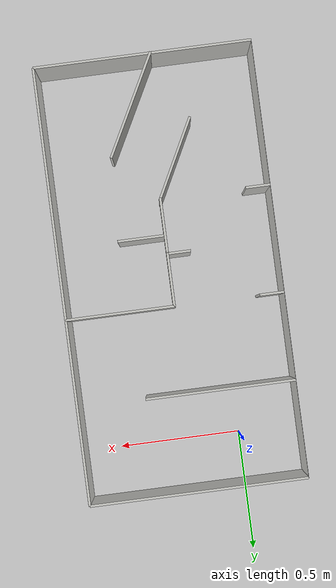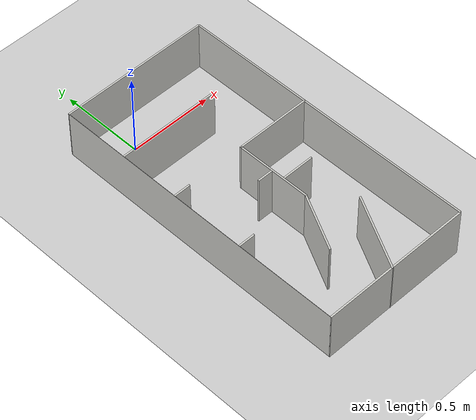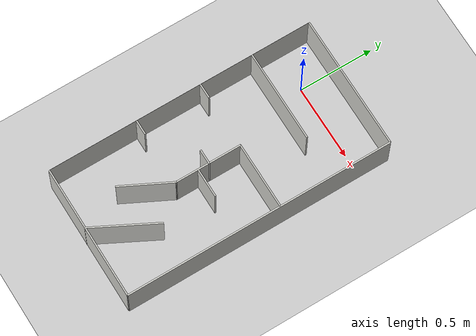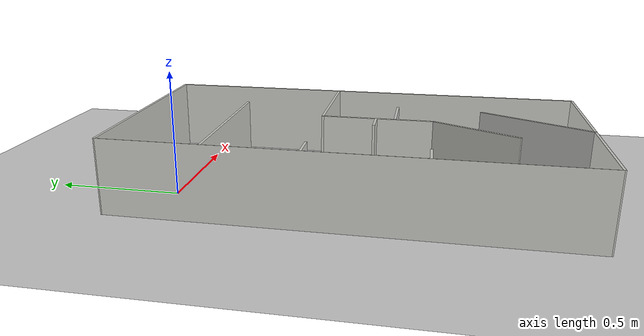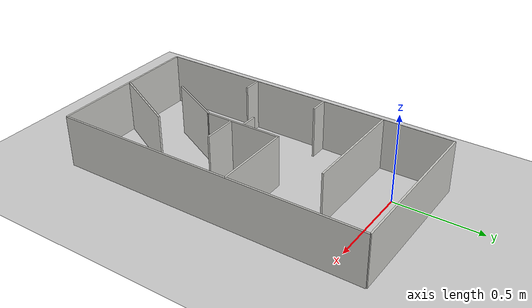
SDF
<sdf version="1.6">
 <world name="default">
  <light name="sun" type="directional">
   <pose>0 0 10 0 -0 0</pose>
   <diffuse>0.8 0.8 0.8 1</diffuse>
   <specular>0.2 0.2 0.2 1</specular>
   <attenuation>
    <range>1000</range>
    <constant>0.9</constant>
    <linear>0.01</linear>
    <quadratic>0.001</quadratic>
   </attenuation>
   <direction>-0.5 0.1 -0.9</direction>
  </light>
  <model name="ground_plane">
   <static>1</static>
   <link name="link">
    <collision name="collision">
     <geometry><plane><normal>0 0 1</normal><size>100 100</size></plane></geometry>
     <surface>
      <contact><collide_bitmask>65535</collide_bitmask></contact>
      <friction><ode><mu>100</mu><mu2>50</mu2></ode></friction>
     </surface>
    </collision>
    <visual name="visual">
     <cast_shadows>0</cast_shadows>
     <geometry><plane><normal>0 0 1</normal><size>100 100</size></plane></geometry>
     <material>
      <script><uri>file://media/materials/scripts/gazebo.material</uri><name>Gazebo/Grey</name></script>
     </material>
    </visual>
   </link>
  </model>
  <gravity>0 0 -9.8</gravity>
  <magnetic_field>6e-06 2.3e-05 -4.2e-05</magnetic_field>
  <atmosphere type="adiabatic"/>
  <physics name="default_physics" default="0" type="ode">
   <max_step_size>0.001</max_step_size>
   <real_time_factor>1</real_time_factor>
   <real_time_update_rate>1000</real_time_update_rate>
  </physics>
  <scene><ambient>0.4 0.4 0.4 1</ambient><background>0.7 0.7 0.7 1</background><shadows>1</shadows></scene>
  <audio><device>default</device></audio>
  <spherical_coordinates>
   <surface_model>EARTH_WGS84</surface_model>
   <latitude_deg>0</latitude_deg>
   <longitude_deg>0</longitude_deg>
   <elevation>0</elevation>
   <heading_deg>0</heading_deg>
  </spherical_coordinates>
  <model name="qmp_map_sim">
   <pose>0.2 -0.7 0 0 -0 0</pose>
   <link name="Wall_0">
    <collision name="Wall_0_Collision">
     <geometry><box><size>1.795 0.001 0.3</size></box></geometry>
     <pose>0 0 0.15 0 -0 0</pose>
    </collision>
    <visual name="Wall_0_Visual">
     <pose>0 0 0.15 0 -0 0</pose>
     <geometry><box><size>1.795 0.001 0.3</size></box></geometry>
     <material>
      <script><uri>file://media/materials/scripts/gazebo.material</uri><name>Gazebo/CeilingTiled</name></script>
      <ambient>1 1 1 1</ambient>
     </material>
     <meta><layer>0</layer></meta>
    </visual>
    <pose>-0.4475 0.003376 0 0 -0 1.5708</pose>
   </link>
   <link name="Wall_10">
    <collision name="Wall_10_Collision">
     <geometry><box><size>0.45 0.01 0.3</size></box></geometry>
     <pose>0 0 0.15 0 -0 0</pose>
    </collision>
    <visual name="Wall_10_Visual">
     <pose>0 0 0.15 0 -0 0</pose>
     <geometry><box><size>0.45 0.01 0.3</size></box></geometry>
     <material>
      <script><uri>file://media/materials/scripts/gazebo.material</uri><name>Gazebo/CeilingTiled</name></script>
      <ambient>1 1 1 1</ambient>
     </material>
     <meta><layer>0</layer></meta>
    </visual>
    <pose>0.2225 0.140876 0 0 -0 3.14159</pose>
   </link>
   <link name="Wall_12">
    <collision name="Wall_12_Collision">
     <geometry><box><size>0.1 0.01 0.3</size></box></geometry>
     <pose>0 0 0.15 0 -0 0</pose>
    </collision>
    <visual name="Wall_12_Visual">
     <pose>0 0 0.15 0 -0 0</pose>
     <geometry><box><size>0.1 0.01 0.3</size></box></geometry>
     <material>
      <script><uri>file://media/materials/scripts/gazebo.material</uri><name>Gazebo/CeilingTiled</name></script>
      <ambient>1 1 1 1</ambient>
     </material>
     <meta><layer>0</layer></meta>
    </visual>
    <pose>-0.3975 0.140876 0 0 -0 0</pose>
   </link>
   <link name="Wall_14">
    <collision name="Wall_14_Collision">
     <geometry><box><size>0.45 0.01 0.3</size></box></geometry>
     <pose>0 0 0.15 0 -0 0</pose>
    </collision>
    <visual name="Wall_14_Visual">
     <pose>0 0 0.15 0 -0 0</pose>
     <geometry><box><size>0.45 0.01 0.3</size></box></geometry>
     <material>
      <script><uri>file://media/materials/scripts/gazebo.material</uri><name>Gazebo/CeilingTiled</name></script>
      <ambient>1 1 1 1</ambient>
     </material>
     <meta><layer>0</layer></meta>
    </visual>
    <pose>0.0025 -0.079124 0 0 -0 -1.5708</pose>
   </link>
   <link name="Wall_16">
    <collision name="Wall_16_Collision">
     <geometry><box><size>0.1 0.01 0.3</size></box></geometry>
     <pose>0 0 0.15 0 -0 0</pose>
    </collision>
    <visual name="Wall_16_Visual">
     <pose>0 0 0.15 0 -0 0</pose>
     <geometry><box><size>0.1 0.01 0.3</size></box></geometry>
     <material>
      <script><uri>file://media/materials/scripts/gazebo.material</uri><name>Gazebo/CeilingTiled</name></script>
      <ambient>1 1 1 1</ambient>
     </material>
     <meta><layer>0</layer></meta>
    </visual>
    <pose>-0.0425 -0.074124 0 0 -0 3.14159</pose>
   </link>
   <link name="Wall_18">
    <collision name="Wall_18_Collision">
     <geometry><box><size>0.1 0.01 0.3</size></box></geometry>
     <pose>0 0 0.15 0 -0 0</pose>
    </collision>
    <visual name="Wall_18_Visual">
     <pose>0 0 0.15 0 -0 0</pose>
     <geometry><box><size>0.1 0.01 0.3</size></box></geometry>
     <material>
      <script><uri>file://media/materials/scripts/gazebo.material</uri><name>Gazebo/CeilingTiled</name></script>
      <ambient>1 1 1 1</ambient>
     </material>
     <meta><layer>0</layer></meta>
    </visual>
    <pose>-0.3975 -0.299124 0 0 -0 0</pose>
   </link>
   <link name="Wall_2">
    <collision name="Wall_2_Collision">
     <geometry><box><size>0.895 0.01 0.3</size></box></geometry>
     <pose>0 0 0.15 0 -0 0</pose>
    </collision>
    <visual name="Wall_2_Visual">
     <pose>0 0 0.15 0 -0 0</pose>
     <geometry><box><size>0.895 0.01 0.3</size></box></geometry>
     <material>
      <script><uri>file://media/materials/scripts/gazebo.material</uri><name>Gazebo/CeilingTiled</name></script>
      <ambient>1 1 1 1</ambient>
     </material>
     <meta><layer>0</layer></meta>
    </visual>
    <pose>0 0.900876 0 0 -0 0</pose>
   </link>
   <link name="Wall_20">
    <collision name="Wall_20_Collision">
     <geometry><box><size>0.36 0.01 0.3</size></box></geometry>
     <pose>0 0 0.15 0 -0 0</pose>
    </collision>
    <visual name="Wall_20_Visual">
     <pose>0 0 0.15 0 -0 0</pose>
     <geometry><box><size>0.36 0.01 0.3</size></box></geometry>
     <material>
      <script><uri>file://media/materials/scripts/gazebo.material</uri><name>Gazebo/CeilingTiled</name></script>
      <ambient>1 1 1 1</ambient>
     </material>
     <meta><layer>0</layer></meta>
    </visual>
    <pose>-0.0775 -0.455124 0 0 -0 -2.04465</pose>
   </link>
   <link name="Wall_22">
    <collision name="Wall_22_Collision">
     <geometry><box><size>0.461774 0.01 0.3</size></box></geometry>
     <pose>0 0 0.15 0 -0 0</pose>
    </collision>
    <visual name="Wall_22_Visual">
     <pose>0 0 0.15 0 -0 0</pose>
     <geometry><box><size>0.461774 0.01 0.3</size></box></geometry>
     <material>
      <script><uri>file://media/materials/scripts/gazebo.material</uri><name>Gazebo/CeilingTiled</name></script>
      <ambient>1 1 1 1</ambient>
     </material>
     <meta><layer>0</layer></meta>
    </visual>
    <pose>0.0725 -0.694124 0 0 -0 1.08735</pose>
   </link>
   <link name="Wall_24">
    <collision name="Wall_24_Collision">
     <geometry><box><size>0.19 0.01 0.3</size></box></geometry>
     <pose>0 0 0.15 0 -0 0</pose>
    </collision>
    <visual name="Wall_24_Visual">
     <pose>0 0 0.15 0 -0 0</pose>
     <geometry><box><size>0.19 0.01 0.3</size></box></geometry>
     <material>
      <script><uri>file://media/materials/scripts/gazebo.material</uri><name>Gazebo/CeilingTiled</name></script>
      <ambient>1 1 1 1</ambient>
     </material>
     <meta><layer>0</layer></meta>
    </visual>
    <pose>0.1025 -0.149124 0 0 -0 0</pose>
   </link>
   <link name="Wall_4">
    <collision name="Wall_4_Collision">
     <geometry><box><size>1.795 0.01 0.3</size></box></geometry>
     <pose>0 0 0.15 0 -0 0</pose>
    </collision>
    <visual name="Wall_4_Visual">
     <pose>0 0 0.15 0 -0 0</pose>
     <geometry><box><size>1.795 0.01 0.3</size></box></geometry>
     <material>
      <script><uri>file://media/materials/scripts/gazebo.material</uri><name>Gazebo/CeilingTiled</name></script>
      <ambient>1 1 1 1</ambient>
     </material>
     <meta><layer>0</layer></meta>
    </visual>
    <pose>0.4475 0.003376 0 0 -0 -1.5708</pose>
   </link>
   <link name="Wall_6">
    <collision name="Wall_6_Collision">
     <geometry><box><size>0.895 0.01 0.3</size></box></geometry>
     <pose>0 0 0.15 0 -0 0</pose>
    </collision>
    <visual name="Wall_6_Visual">
     <pose>0 0 0.15 0 -0 0</pose>
     <geometry><box><size>0.895 0.01 0.3</size></box></geometry>
     <material>
      <script><uri>file://media/materials/scripts/gazebo.material</uri><name>Gazebo/CeilingTiled</name></script>
      <ambient>1 1 1 1</ambient>
     </material>
     <meta><layer>0</layer></meta>
    </visual>
    <pose>0 -0.894124 0 0 -0 3.14159</pose>
   </link>
   <link name="Wall_8">
    <collision name="Wall_8_Collision">
     <geometry><box><size>0.615 0.01 0.3</size></box></geometry>
     <pose>0 0 0.15 0 -0 0</pose>
    </collision>
    <visual name="Wall_8_Visual">
     <pose>0 0 0.15 0 -0 0</pose>
     <geometry><box><size>0.615 0.01 0.3</size></box></geometry>
     <material>
      <script><uri>file://media/materials/scripts/gazebo.material</uri><name>Gazebo/CeilingTiled</name></script>
      <ambient>1 1 1 1</ambient>
     </material>
     <meta><layer>0</layer></meta>
    </visual>
    <pose>-0.14 0.500876 0 0 -0 0</pose>
   </link>
   <static>1</static>
  </model>
 </world>
</sdf>
